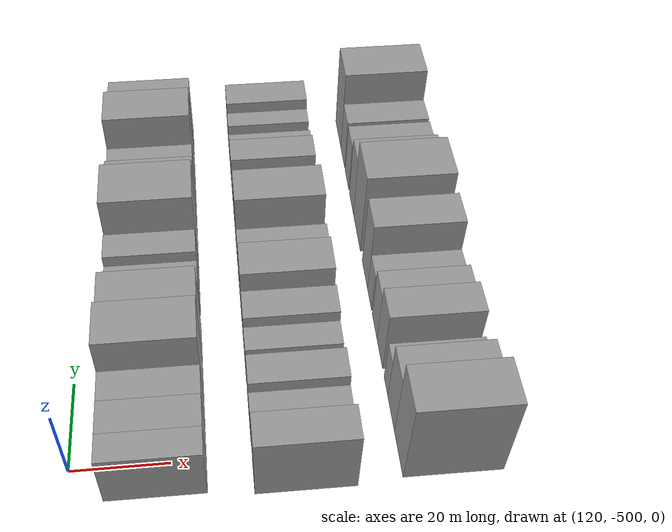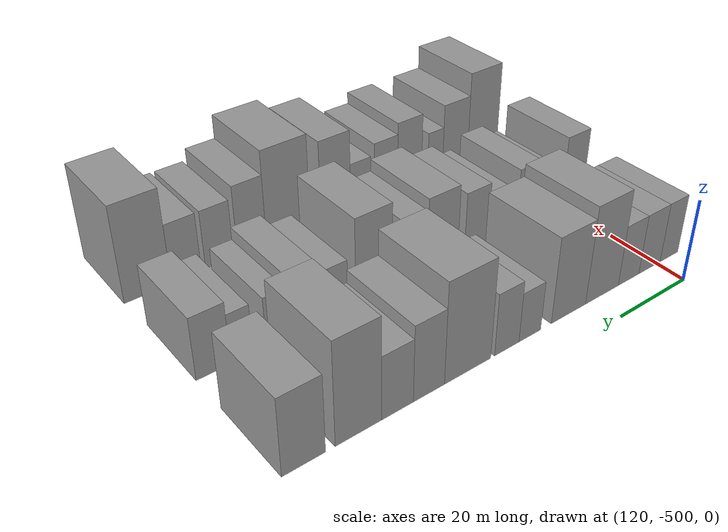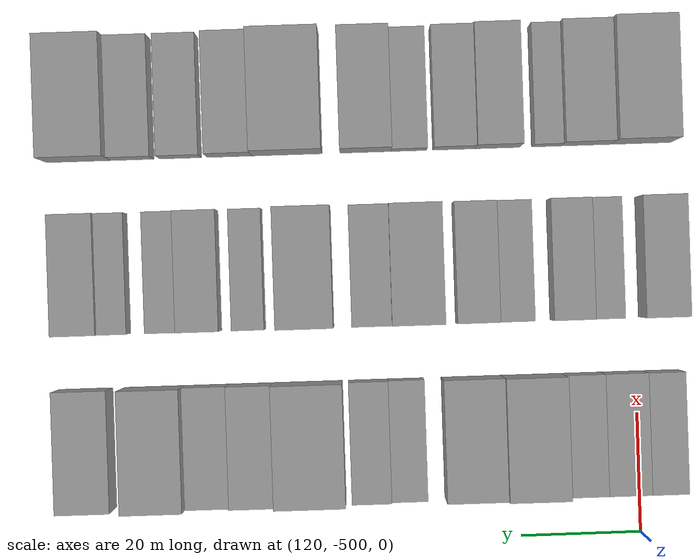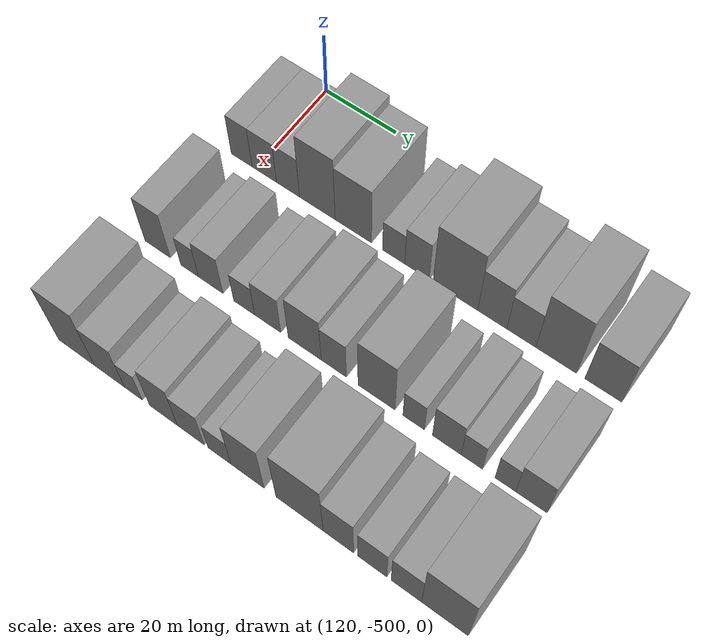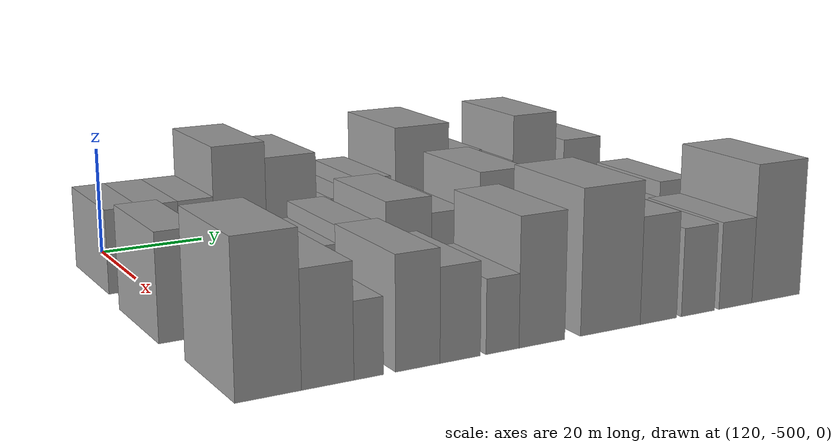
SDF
<sdf version="1.6">
 <world name="default">
  <model name="building_339">
   <static>1</static>
   <pose>137.0000 -503.9896 0 0.000000 0.000000 0.000000</pose>
   <link name="link">
    <pose>0 0 7.50 0 0 0</pose>
    <collision name="collision"><geometry><box><size>20.0000 6.0208 15.0000</size></box></geometry></collision>
    <visual name="visual">
     <cast_shadows>0</cast_shadows>
     <geometry><box><size>20.0000 6.0208 15.0000</size></box></geometry>
     <material>
      <script>
       <uri>model://grey_wall/materials/scripts</uri>
       <uri>model://grey_wall/materials/textures</uri>
       <name>vrc/grey_wall</name>
      </script>
     </material>
    </visual>
   </link>
  </model>
  <model name="building_340">
   <static>1</static>
   <pose>137.0000 -497.4619 0 0.000000 0.000000 0.000000</pose>
   <link name="link">
    <pose>0 0 7.50 0 0 0</pose>
    <collision name="collision"><geometry><box><size>20.0000 7.0346 15.0000</size></box></geometry></collision>
    <visual name="visual">
     <cast_shadows>0</cast_shadows>
     <geometry><box><size>20.0000 7.0346 15.0000</size></box></geometry>
     <material>
      <script>
       <uri>model://grey_wall/materials/scripts</uri>
       <uri>model://grey_wall/materials/textures</uri>
       <name>vrc/grey_wall</name>
      </script>
     </material>
    </visual>
   </link>
  </model>
  <model name="building_341">
   <static>1</static>
   <pose>137.0000 -490.6629 0 0.000000 0.000000 0.000000</pose>
   <link name="link">
    <pose>0 0 7.50 0 0 0</pose>
    <collision name="collision"><geometry><box><size>20.0000 6.5634 15.0000</size></box></geometry></collision>
    <visual name="visual">
     <cast_shadows>0</cast_shadows>
     <geometry><box><size>20.0000 6.5634 15.0000</size></box></geometry>
     <material>
      <script>
       <uri>model://grey_wall/materials/scripts</uri>
       <uri>model://grey_wall/materials/textures</uri>
       <name>vrc/grey_wall</name>
      </script>
     </material>
    </visual>
   </link>
  </model>
  <model name="building_342">
   <static>1</static>
   <pose>137.0000 -482.3569 0 0.000000 0.000000 0.000000</pose>
   <link name="link">
    <pose>0 0 12.00 0 0 0</pose>
    <collision name="collision"><geometry><box><size>20.0000 10.0487 24.0000</size></box></geometry></collision>
    <visual name="visual">
     <cast_shadows>0</cast_shadows>
     <geometry><box><size>20.0000 10.0487 24.0000</size></box></geometry>
     <material>
      <script>
       <uri>model://grey_wall/materials/scripts</uri>
       <uri>model://grey_wall/materials/textures</uri>
       <name>vrc/grey_wall</name>
      </script>
     </material>
    </visual>
   </link>
  </model>
  <model name="building_343">
   <static>1</static>
   <pose>137.0000 -472.3465 0 0.000000 0.000000 0.000000</pose>
   <link name="link">
    <pose>0 0 10.50 0 0 0</pose>
    <collision name="collision"><geometry><box><size>20.0000 9.9721 21.0000</size></box></geometry></collision>
    <visual name="visual">
     <cast_shadows>0</cast_shadows>
     <geometry><box><size>20.0000 9.9721 21.0000</size></box></geometry>
     <material>
      <script>
       <uri>model://grey_wall/materials/scripts</uri>
       <uri>model://grey_wall/materials/textures</uri>
       <name>vrc/grey_wall</name>
      </script>
     </material>
    </visual>
   </link>
  </model>
  <model name="building_344">
   <static>1</static>
   <pose>137.0000 -461.3777 0 0.000000 0.000000 0.000000</pose>
   <link name="link">
    <pose>0 0 6.00 0 0 0</pose>
    <collision name="collision"><geometry><box><size>20.0000 5.9655 12.0000</size></box></geometry></collision>
    <visual name="visual">
     <cast_shadows>0</cast_shadows>
     <geometry><box><size>20.0000 5.9655 12.0000</size></box></geometry>
     <material>
      <script>
       <uri>model://grey_wall/materials/scripts</uri>
       <uri>model://grey_wall/materials/textures</uri>
       <name>vrc/grey_wall</name>
      </script>
     </material>
    </visual>
   </link>
  </model>
  <model name="building_345">
   <static>1</static>
   <pose>137.0000 -455.1434 0 0.000000 0.000000 0.000000</pose>
   <link name="link">
    <pose>0 0 7.50 0 0 0</pose>
    <collision name="collision"><geometry><box><size>20.0000 6.5033 15.0000</size></box></geometry></collision>
    <visual name="visual">
     <cast_shadows>0</cast_shadows>
     <geometry><box><size>20.0000 6.5033 15.0000</size></box></geometry>
     <material>
      <script>
       <uri>model://grey_wall/materials/scripts</uri>
       <uri>model://grey_wall/materials/textures</uri>
       <name>vrc/grey_wall</name>
      </script>
     </material>
    </visual>
   </link>
  </model>
  <model name="building_346">
   <static>1</static>
   <pose>137.0000 -445.0712 0 0.000000 0.000000 0.000000</pose>
   <link name="link">
    <pose>0 0 12.00 0 0 0</pose>
    <collision name="collision"><geometry><box><size>20.0000 11.6410 24.0000</size></box></geometry></collision>
    <visual name="visual">
     <cast_shadows>0</cast_shadows>
     <geometry><box><size>20.0000 11.6410 24.0000</size></box></geometry>
     <material>
      <script>
       <uri>model://grey_wall/materials/scripts</uri>
       <uri>model://grey_wall/materials/textures</uri>
       <name>vrc/grey_wall</name>
      </script>
     </material>
    </visual>
   </link>
  </model>
  <model name="building_347">
   <static>1</static>
   <pose>137.0000 -435.5443 0 0.000000 0.000000 0.000000</pose>
   <link name="link">
    <pose>0 0 9.00 0 0 0</pose>
    <collision name="collision"><geometry><box><size>20.0000 7.4128 18.0000</size></box></geometry></collision>
    <visual name="visual">
     <cast_shadows>0</cast_shadows>
     <geometry><box><size>20.0000 7.4128 18.0000</size></box></geometry>
     <material>
      <script>
       <uri>model://grey_wall/materials/scripts</uri>
       <uri>model://grey_wall/materials/textures</uri>
       <name>vrc/grey_wall</name>
      </script>
     </material>
    </visual>
   </link>
  </model>
  <model name="building_348">
   <static>1</static>
   <pose>137.0000 -428.1903 0 0.000000 0.000000 0.000000</pose>
   <link name="link">
    <pose>0 0 7.50 0 0 0</pose>
    <collision name="collision"><geometry><box><size>20.0000 7.2952 15.0000</size></box></geometry></collision>
    <visual name="visual">
     <cast_shadows>0</cast_shadows>
     <geometry><box><size>20.0000 7.2952 15.0000</size></box></geometry>
     <material>
      <script>
       <uri>model://grey_wall/materials/scripts</uri>
       <uri>model://grey_wall/materials/textures</uri>
       <name>vrc/grey_wall</name>
      </script>
     </material>
    </visual>
   </link>
  </model>
  <model name="building_349">
   <static>1</static>
   <pose>137.0000 -419.5020 0 0.000000 0.000000 0.000000</pose>
   <link name="link">
    <pose>0 0 12.00 0 0 0</pose>
    <collision name="collision"><geometry><box><size>20.0000 10.0815 24.0000</size></box></geometry></collision>
    <visual name="visual">
     <cast_shadows>0</cast_shadows>
     <geometry><box><size>20.0000 10.0815 24.0000</size></box></geometry>
     <material>
      <script>
       <uri>model://grey_wall/materials/scripts</uri>
       <uri>model://grey_wall/materials/textures</uri>
       <name>vrc/grey_wall</name>
      </script>
     </material>
    </visual>
   </link>
  </model>
  <model name="building_350">
   <static>1</static>
   <pose>137.0000 -407.9793 0 0.000000 0.000000 0.000000</pose>
   <link name="link">
    <pose>0 0 9.00 0 0 0</pose>
    <collision name="collision"><geometry><box><size>20.0000 8.9638 18.0000</size></box></geometry></collision>
    <visual name="visual">
     <cast_shadows>0</cast_shadows>
     <geometry><box><size>20.0000 8.9638 18.0000</size></box></geometry>
     <material>
      <script>
       <uri>model://grey_wall/materials/scripts</uri>
       <uri>model://grey_wall/materials/textures</uri>
       <name>vrc/grey_wall</name>
      </script>
     </material>
    </visual>
   </link>
  </model>
  <model name="building_453">
   <static>1</static>
   <pose>166.0000 -504.3535 0 0.000000 0.000000 0.000000</pose>
   <link name="link">
    <pose>0 0 9.00 0 0 0</pose>
    <collision name="collision"><geometry><box><size>20.0000 7.2931 18.0000</size></box></geometry></collision>
    <visual name="visual">
     <cast_shadows>0</cast_shadows>
     <geometry><box><size>20.0000 7.2931 18.0000</size></box></geometry>
     <material>
      <script>
       <uri>model://grey_wall/materials/scripts</uri>
       <uri>model://grey_wall/materials/textures</uri>
       <name>vrc/grey_wall</name>
      </script>
     </material>
    </visual>
   </link>
  </model>
  <model name="building_454">
   <static>1</static>
   <pose>166.0000 -495.2117 0 0.000000 0.000000 0.000000</pose>
   <link name="link">
    <pose>0 0 6.00 0 0 0</pose>
    <collision name="collision"><geometry><box><size>20.0000 4.9904 12.0000</size></box></geometry></collision>
    <visual name="visual">
     <cast_shadows>0</cast_shadows>
     <geometry><box><size>20.0000 4.9904 12.0000</size></box></geometry>
     <material>
      <script>
       <uri>model://grey_wall/materials/scripts</uri>
       <uri>model://grey_wall/materials/textures</uri>
       <name>vrc/grey_wall</name>
      </script>
     </material>
    </visual>
   </link>
  </model>
  <model name="building_455">
   <static>1</static>
   <pose>166.0000 -489.3011 0 0.000000 0.000000 0.000000</pose>
   <link name="link">
    <pose>0 0 7.50 0 0 0</pose>
    <collision name="collision"><geometry><box><size>20.0000 6.8309 15.0000</size></box></geometry></collision>
    <visual name="visual">
     <cast_shadows>0</cast_shadows>
     <geometry><box><size>20.0000 6.8309 15.0000</size></box></geometry>
     <material>
      <script>
       <uri>model://grey_wall/materials/scripts</uri>
       <uri>model://grey_wall/materials/textures</uri>
       <name>vrc/grey_wall</name>
      </script>
     </material>
    </visual>
   </link>
  </model>
  <model name="building_456">
   <static>1</static>
   <pose>166.0000 -480.0038 0 0.000000 0.000000 0.000000</pose>
   <link name="link">
    <pose>0 0 6.00 0 0 0</pose>
    <collision name="collision"><geometry><box><size>20.0000 5.7637 12.0000</size></box></geometry></collision>
    <visual name="visual">
     <cast_shadows>0</cast_shadows>
     <geometry><box><size>20.0000 5.7637 12.0000</size></box></geometry>
     <material>
      <script>
       <uri>model://grey_wall/materials/scripts</uri>
       <uri>model://grey_wall/materials/textures</uri>
       <name>vrc/grey_wall</name>
      </script>
     </material>
    </visual>
   </link>
  </model>
  <model name="building_457">
   <static>1</static>
   <pose>166.0000 -473.6042 0 0.000000 0.000000 0.000000</pose>
   <link name="link">
    <pose>0 0 7.50 0 0 0</pose>
    <collision name="collision"><geometry><box><size>20.0000 7.0355 15.0000</size></box></geometry></collision>
    <visual name="visual">
     <cast_shadows>0</cast_shadows>
     <geometry><box><size>20.0000 7.0355 15.0000</size></box></geometry>
     <material>
      <script>
       <uri>model://grey_wall/materials/scripts</uri>
       <uri>model://grey_wall/materials/textures</uri>
       <name>vrc/grey_wall</name>
      </script>
     </material>
    </visual>
   </link>
  </model>
  <model name="building_458">
   <static>1</static>
   <pose>166.0000 -463.7223 0 0.000000 0.000000 0.000000</pose>
   <link name="link">
    <pose>0 0 9.00 0 0 0</pose>
    <collision name="collision"><geometry><box><size>20.0000 8.7282 18.0000</size></box></geometry></collision>
    <visual name="visual">
     <cast_shadows>0</cast_shadows>
     <geometry><box><size>20.0000 8.7282 18.0000</size></box></geometry>
     <material>
      <script>
       <uri>model://grey_wall/materials/scripts</uri>
       <uri>model://grey_wall/materials/textures</uri>
       <name>vrc/grey_wall</name>
      </script>
     </material>
    </visual>
   </link>
  </model>
  <model name="building_459">
   <static>1</static>
   <pose>166.0000 -456.0624 0 0.000000 0.000000 0.000000</pose>
   <link name="link">
    <pose>0 0 7.50 0 0 0</pose>
    <collision name="collision"><geometry><box><size>20.0000 6.5917 15.0000</size></box></geometry></collision>
    <visual name="visual">
     <cast_shadows>0</cast_shadows>
     <geometry><box><size>20.0000 6.5917 15.0000</size></box></geometry>
     <material>
      <script>
       <uri>model://grey_wall/materials/scripts</uri>
       <uri>model://grey_wall/materials/textures</uri>
       <name>vrc/grey_wall</name>
      </script>
     </material>
    </visual>
   </link>
  </model>
  <model name="building_460">
   <static>1</static>
   <pose>166.0000 -445.0530 0 0.000000 0.000000 0.000000</pose>
   <link name="link">
    <pose>0 0 10.50 0 0 0</pose>
    <collision name="collision"><geometry><box><size>20.0000 9.4271 21.0000</size></box></geometry></collision>
    <visual name="visual">
     <cast_shadows>0</cast_shadows>
     <geometry><box><size>20.0000 9.4271 21.0000</size></box></geometry>
     <material>
      <script>
       <uri>model://grey_wall/materials/scripts</uri>
       <uri>model://grey_wall/materials/textures</uri>
       <name>vrc/grey_wall</name>
      </script>
     </material>
    </visual>
   </link>
  </model>
  <model name="building_461">
   <static>1</static>
   <pose>166.0000 -435.6546 0 0.000000 0.000000 0.000000</pose>
   <link name="link">
    <pose>0 0 6.00 0 0 0</pose>
    <collision name="collision"><geometry><box><size>20.0000 5.3699 12.0000</size></box></geometry></collision>
    <visual name="visual">
     <cast_shadows>0</cast_shadows>
     <geometry><box><size>20.0000 5.3699 12.0000</size></box></geometry>
     <material>
      <script>
       <uri>model://grey_wall/materials/scripts</uri>
       <uri>model://grey_wall/materials/textures</uri>
       <name>vrc/grey_wall</name>
      </script>
     </material>
    </visual>
   </link>
  </model>
  <model name="building_462">
   <static>1</static>
   <pose>166.0000 -427.4308 0 0.000000 0.000000 0.000000</pose>
   <link name="link">
    <pose>0 0 7.50 0 0 0</pose>
    <collision name="collision"><geometry><box><size>20.0000 7.0776 15.0000</size></box></geometry></collision>
    <visual name="visual">
     <cast_shadows>0</cast_shadows>
     <geometry><box><size>20.0000 7.0776 15.0000</size></box></geometry>
     <material>
      <script>
       <uri>model://grey_wall/materials/scripts</uri>
       <uri>model://grey_wall/materials/textures</uri>
       <name>vrc/grey_wall</name>
      </script>
     </material>
    </visual>
   </link>
  </model>
  <model name="building_463">
   <static>1</static>
   <pose>166.0000 -421.3100 0 0.000000 0.000000 0.000000</pose>
   <link name="link">
    <pose>0 0 6.00 0 0 0</pose>
    <collision name="collision"><geometry><box><size>20.0000 5.1640 12.0000</size></box></geometry></collision>
    <visual name="visual">
     <cast_shadows>0</cast_shadows>
     <geometry><box><size>20.0000 5.1640 12.0000</size></box></geometry>
     <material>
      <script>
       <uri>model://grey_wall/materials/scripts</uri>
       <uri>model://grey_wall/materials/textures</uri>
       <name>vrc/grey_wall</name>
      </script>
     </material>
    </visual>
   </link>
  </model>
  <model name="building_464">
   <static>1</static>
   <pose>166.0000 -413.2680 0 0.000000 0.000000 0.000000</pose>
   <link name="link">
    <pose>0 0 6.00 0 0 0</pose>
    <collision name="collision"><geometry><box><size>20.0000 4.9199 12.0000</size></box></geometry></collision>
    <visual name="visual">
     <cast_shadows>0</cast_shadows>
     <geometry><box><size>20.0000 4.9199 12.0000</size></box></geometry>
     <material>
      <script>
       <uri>model://grey_wall/materials/scripts</uri>
       <uri>model://grey_wall/materials/textures</uri>
       <name>vrc/grey_wall</name>
      </script>
     </material>
    </visual>
   </link>
  </model>
  <model name="building_465">
   <static>1</static>
   <pose>166.0000 -407.0946 0 0.000000 0.000000 0.000000</pose>
   <link name="link">
    <pose>0 0 7.50 0 0 0</pose>
    <collision name="collision"><geometry><box><size>20.0000 7.4270 15.0000</size></box></geometry></collision>
    <visual name="visual">
     <cast_shadows>0</cast_shadows>
     <geometry><box><size>20.0000 7.4270 15.0000</size></box></geometry>
     <material>
      <script>
       <uri>model://grey_wall/materials/scripts</uri>
       <uri>model://grey_wall/materials/textures</uri>
       <name>vrc/grey_wall</name>
      </script>
     </material>
    </visual>
   </link>
  </model>
  <model name="building_566">
   <static>1</static>
   <pose>195.0000 -501.9317 0 0.000000 0.000000 0.000000</pose>
   <link name="link">
    <pose>0 0 12.00 0 0 0</pose>
    <collision name="collision"><geometry><box><size>20.0000 10.1366 24.0000</size></box></geometry></collision>
    <visual name="visual">
     <cast_shadows>0</cast_shadows>
     <geometry><box><size>20.0000 10.1366 24.0000</size></box></geometry>
     <material>
      <script>
       <uri>model://grey_wall/materials/scripts</uri>
       <uri>model://grey_wall/materials/textures</uri>
       <name>vrc/grey_wall</name>
      </script>
     </material>
    </visual>
   </link>
  </model>
  <model name="building_567">
   <static>1</static>
   <pose>195.0000 -492.7155 0 0.000000 0.000000 0.000000</pose>
   <link name="link">
    <pose>0 0 9.00 0 0 0</pose>
    <collision name="collision"><geometry><box><size>20.0000 8.2958 18.0000</size></box></geometry></collision>
    <visual name="visual">
     <cast_shadows>0</cast_shadows>
     <geometry><box><size>20.0000 8.2958 18.0000</size></box></geometry>
     <material>
      <script>
       <uri>model://grey_wall/materials/scripts</uri>
       <uri>model://grey_wall/materials/textures</uri>
       <name>vrc/grey_wall</name>
      </script>
     </material>
    </visual>
   </link>
  </model>
  <model name="building_568">
   <static>1</static>
   <pose>195.0000 -486.1540 0 0.000000 0.000000 0.000000</pose>
   <link name="link">
    <pose>0 0 6.00 0 0 0</pose>
    <collision name="collision"><geometry><box><size>20.0000 4.8271 12.0000</size></box></geometry></collision>
    <visual name="visual">
     <cast_shadows>0</cast_shadows>
     <geometry><box><size>20.0000 4.8271 12.0000</size></box></geometry>
     <material>
      <script>
       <uri>model://grey_wall/materials/scripts</uri>
       <uri>model://grey_wall/materials/textures</uri>
       <name>vrc/grey_wall</name>
      </script>
     </material>
    </visual>
   </link>
  </model>
  <model name="building_569">
   <static>1</static>
   <pose>195.0000 -477.9823 0 0.000000 0.000000 0.000000</pose>
   <link name="link">
    <pose>0 0 9.00 0 0 0</pose>
    <collision name="collision"><geometry><box><size>20.0000 7.5164 18.0000</size></box></geometry></collision>
    <visual name="visual">
     <cast_shadows>0</cast_shadows>
     <geometry><box><size>20.0000 7.5164 18.0000</size></box></geometry>
     <material>
      <script>
       <uri>model://grey_wall/materials/scripts</uri>
       <uri>model://grey_wall/materials/textures</uri>
       <name>vrc/grey_wall</name>
      </script>
     </material>
    </visual>
   </link>
  </model>
  <model name="building_570">
   <static>1</static>
   <pose>195.0000 -470.7055 0 0.000000 0.000000 0.000000</pose>
   <link name="link">
    <pose>0 0 7.50 0 0 0</pose>
    <collision name="collision"><geometry><box><size>20.0000 7.0371 15.0000</size></box></geometry></collision>
    <visual name="visual">
     <cast_shadows>0</cast_shadows>
     <geometry><box><size>20.0000 7.0371 15.0000</size></box></geometry>
     <material>
      <script>
       <uri>model://grey_wall/materials/scripts</uri>
       <uri>model://grey_wall/materials/textures</uri>
       <name>vrc/grey_wall</name>
      </script>
     </material>
    </visual>
   </link>
  </model>
  <model name="building_571">
   <static>1</static>
   <pose>195.0000 -463.2095 0 0.000000 0.000000 0.000000</pose>
   <link name="link">
    <pose>0 0 6.00 0 0 0</pose>
    <collision name="collision"><geometry><box><size>20.0000 5.9550 12.0000</size></box></geometry></collision>
    <visual name="visual">
     <cast_shadows>0</cast_shadows>
     <geometry><box><size>20.0000 5.9550 12.0000</size></box></geometry>
     <material>
      <script>
       <uri>model://grey_wall/materials/scripts</uri>
       <uri>model://grey_wall/materials/textures</uri>
       <name>vrc/grey_wall</name>
      </script>
     </material>
    </visual>
   </link>
  </model>
  <model name="building_572">
   <static>1</static>
   <pose>195.0000 -455.9752 0 0.000000 0.000000 0.000000</pose>
   <link name="link">
    <pose>0 0 10.50 0 0 0</pose>
    <collision name="collision"><geometry><box><size>20.0000 8.5135 21.0000</size></box></geometry></collision>
    <visual name="visual">
     <cast_shadows>0</cast_shadows>
     <geometry><box><size>20.0000 8.5135 21.0000</size></box></geometry>
     <material>
      <script>
       <uri>model://grey_wall/materials/scripts</uri>
       <uri>model://grey_wall/materials/textures</uri>
       <name>vrc/grey_wall</name>
      </script>
     </material>
    </visual>
   </link>
  </model>
  <model name="building_573">
   <static>1</static>
   <pose>195.0000 -442.8539 0 0.000000 0.000000 0.000000</pose>
   <link name="link">
    <pose>0 0 12.00 0 0 0</pose>
    <collision name="collision"><geometry><box><size>20.0000 11.7291 24.0000</size></box></geometry></collision>
    <visual name="visual">
     <cast_shadows>0</cast_shadows>
     <geometry><box><size>20.0000 11.7291 24.0000</size></box></geometry>
     <material>
      <script>
       <uri>model://grey_wall/materials/scripts</uri>
       <uri>model://grey_wall/materials/textures</uri>
       <name>vrc/grey_wall</name>
      </script>
     </material>
    </visual>
   </link>
  </model>
  <model name="building_574">
   <static>1</static>
   <pose>195.0000 -433.2666 0 0.000000 0.000000 0.000000</pose>
   <link name="link">
    <pose>0 0 9.00 0 0 0</pose>
    <collision name="collision"><geometry><box><size>20.0000 7.4455 18.0000</size></box></geometry></collision>
    <visual name="visual">
     <cast_shadows>0</cast_shadows>
     <geometry><box><size>20.0000 7.4455 18.0000</size></box></geometry>
     <material>
      <script>
       <uri>model://grey_wall/materials/scripts</uri>
       <uri>model://grey_wall/materials/textures</uri>
       <name>vrc/grey_wall</name>
      </script>
     </material>
    </visual>
   </link>
  </model>
  <model name="building_575">
   <static>1</static>
   <pose>195.0000 -425.0647 0 0.000000 0.000000 0.000000</pose>
   <link name="link">
    <pose>0 0 7.50 0 0 0</pose>
    <collision name="collision"><geometry><box><size>20.0000 6.9583 15.0000</size></box></geometry></collision>
    <visual name="visual">
     <cast_shadows>0</cast_shadows>
     <geometry><box><size>20.0000 6.9583 15.0000</size></box></geometry>
     <material>
      <script>
       <uri>model://grey_wall/materials/scripts</uri>
       <uri>model://grey_wall/materials/textures</uri>
       <name>vrc/grey_wall</name>
      </script>
     </material>
    </visual>
   </link>
  </model>
  <model name="building_576">
   <static>1</static>
   <pose>195.0000 -417.0067 0 0.000000 0.000000 0.000000</pose>
   <link name="link">
    <pose>0 0 7.50 0 0 0</pose>
    <collision name="collision"><geometry><box><size>20.0000 7.1575 15.0000</size></box></geometry></collision>
    <visual name="visual">
     <cast_shadows>0</cast_shadows>
     <geometry><box><size>20.0000 7.1575 15.0000</size></box></geometry>
     <material>
      <script>
       <uri>model://grey_wall/materials/scripts</uri>
       <uri>model://grey_wall/materials/textures</uri>
       <name>vrc/grey_wall</name>
      </script>
     </material>
    </visual>
   </link>
  </model>
  <model name="building_577">
   <static>1</static>
   <pose>195.0000 -408.0457 0 0.000000 0.000000 0.000000</pose>
   <link name="link">
    <pose>0 0 12.00 0 0 0</pose>
    <collision name="collision"><geometry><box><size>20.0000 10.7646 24.0000</size></box></geometry></collision>
    <visual name="visual">
     <cast_shadows>0</cast_shadows>
     <geometry><box><size>20.0000 10.7646 24.0000</size></box></geometry>
     <material>
      <script>
       <uri>model://grey_wall/materials/scripts</uri>
       <uri>model://grey_wall/materials/textures</uri>
       <name>vrc/grey_wall</name>
      </script>
     </material>
    </visual>
   </link>
  </model>
 </world>
</sdf>
